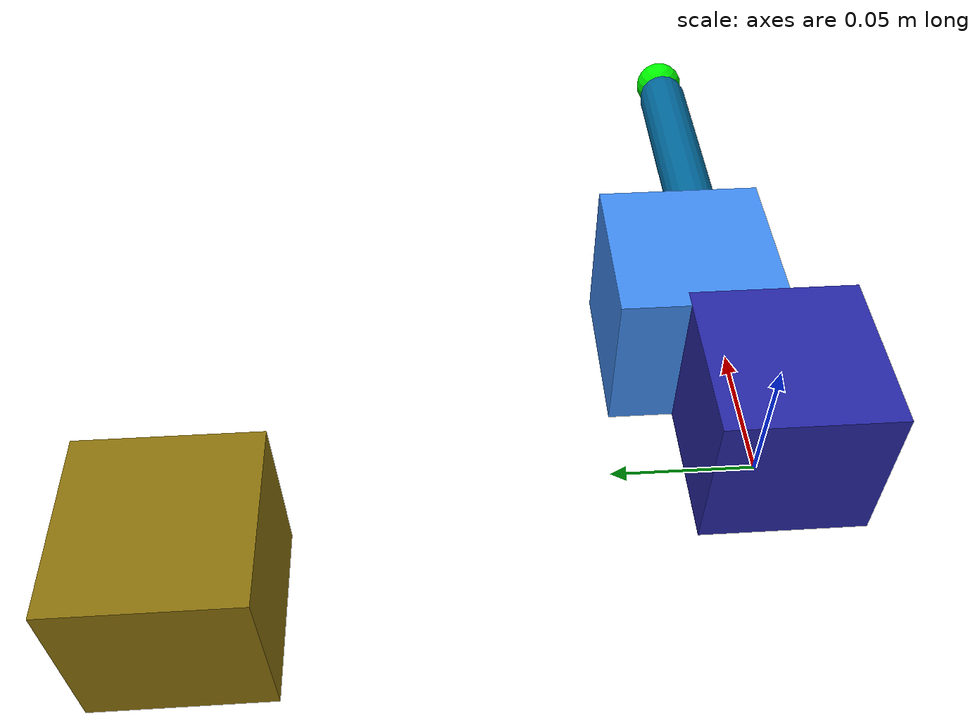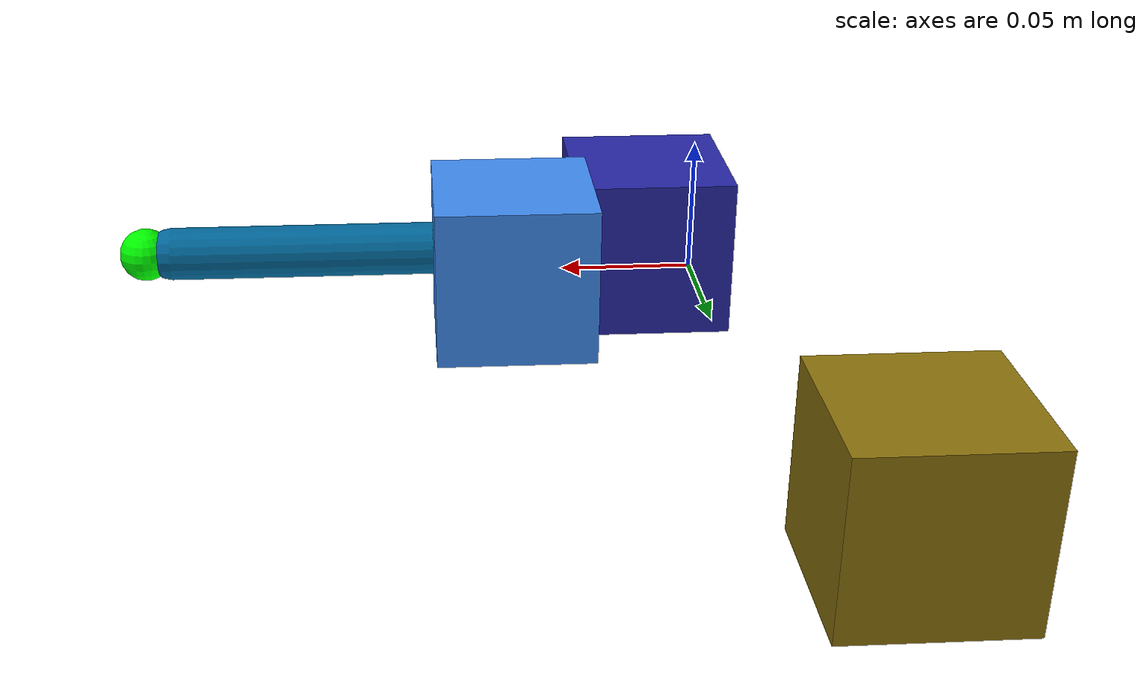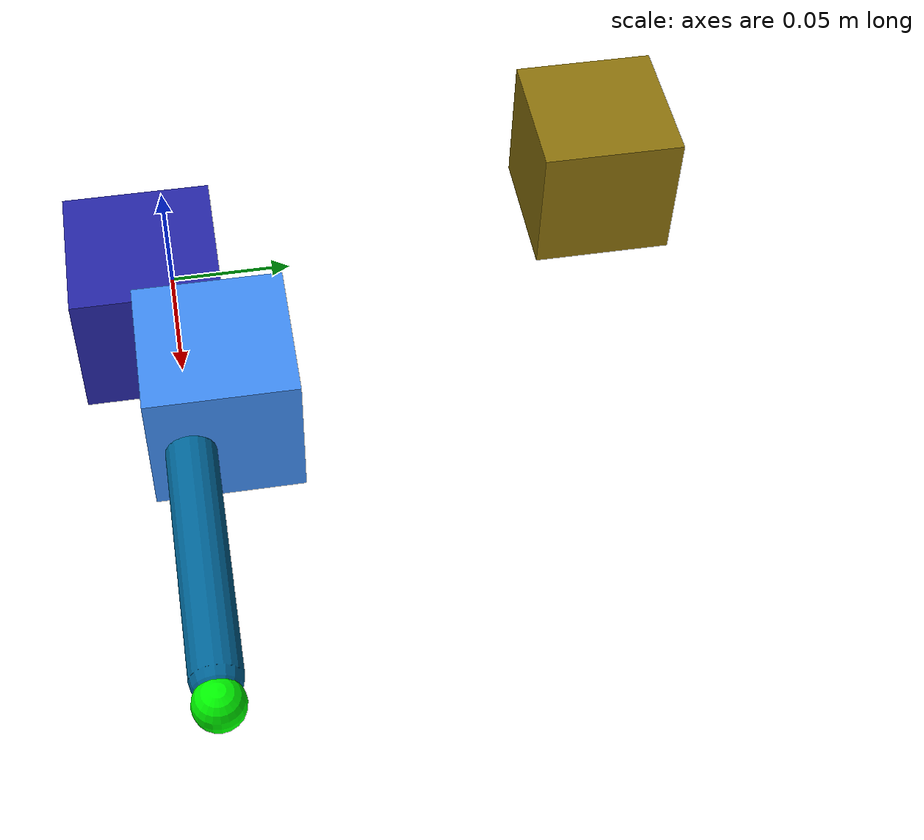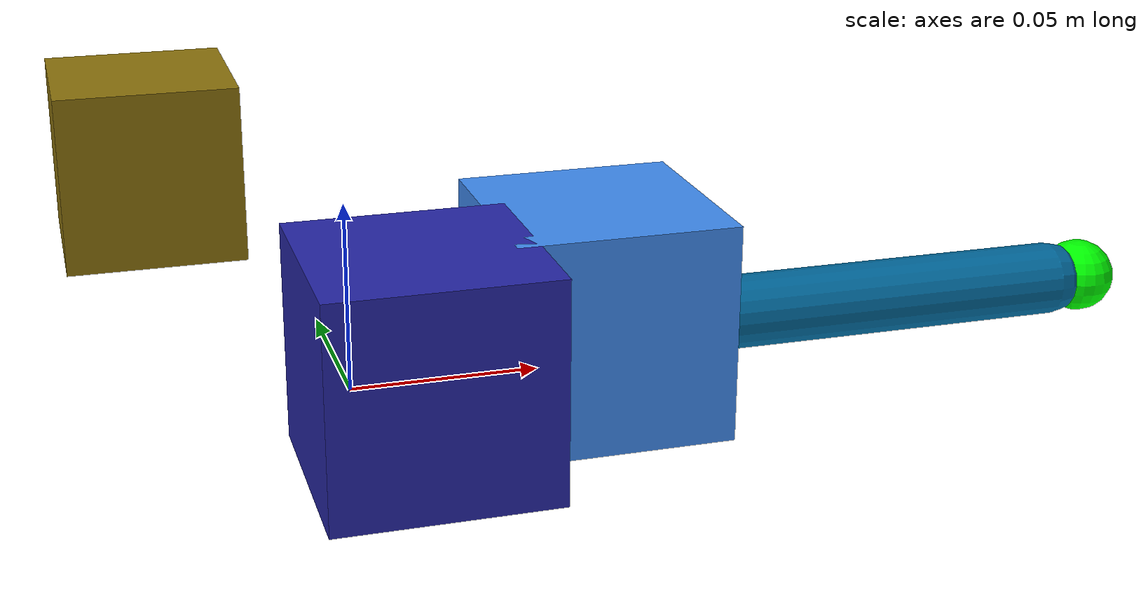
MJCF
<mujoco model="reacher">
	<compiler inertiafromgeom="true" angle="radian"/>
	<default >
		<joint armature="1" damping="1" limited="true"/>
		<geom contype="0" friction="1 0.1 0.1" rgba="0.7 0.7 0 1"/>
	</default>
	<option integrator="RK4" gravity="0 0 -9.81" timestep="0.01"/>
	<worldbody >
		<geom conaffinity="0" name="root" contype="0" fromto="0 0 0 0 0 0.02" rgba="0.9 0.4 0.6 1" type="cylinder" size=".011"/>
		<body name="body0" pos="0 0 .01">
			<geom name="link0" type="capsule" fromto="0 0 0 0.1 0 0" rgba="0.0 0.4 0.6 1.0" size=".01"/>
			<joint limited="true" name="joint0" pos="0 0 0" range="-3.14 3.14" type="hinge" axis="0 0 1"/>
			<body name="body1" pos="0.1 0 0">
				<joint limited="true" name="joint1" pos="0 0 0" range="-3.0 3.0" type="hinge" axis="0 0 1"/>
				<geom name="link1" type="capsule" fromto="0 0 0 0.1 0 0" rgba="0.0 0.4 0.6 1.0" size=".01"/>
				<body name="fingertip" pos="0.11 0 0">
					<site pos="0 0 0" name="fingertip" size="0.01"/>
					<geom name="fingertip" pos="0 0 0" contype="0" rgba="0 1 0 1" type="sphere" size=".01"/>
				</body>
			</body>
		</body>
		<body name="target" pos="0.0701512435261 0.0138124104832 0.01">
			<geom conaffinity="0" density="0.00001" contype="0" rgba="0.25 0.55 0.95 1.0" type="box" size="0.03 0.03 0.03"/>
			<site pos="0 0 0" name="target" size="0.01"/>
		</body>
		<body name="cube_0" pos="0.0165258683159 -0.010584247933 0.01">
			<geom conaffinity="0" density="0.00001" contype="0" rgba="0.15 0.15 0.65 1.0" type="box" size="0.03 0.03 0.03"/>
		</body>
		<body name="cube_1" pos="-0.0347314256215 0.190964120819 0.01">
			<geom conaffinity="0" density="0.00001" contype="0" rgba="0.55 0.45 0.05 1.0" type="box" size="0.03 0.03 0.03"/>
		</body>
	</worldbody>
	<actuator >
		<motor ctrllimited="true" joint="joint0" ctrlrange="-1.0 1.0" gear="200.0"/>
		<motor ctrllimited="true" joint="joint1" ctrlrange="-1.0 1.0" gear="200.0"/>
	</actuator>
</mujoco>
